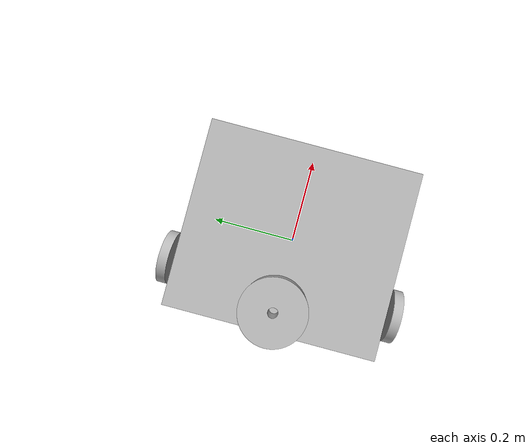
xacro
<?xml version="1.0" ?>
<robot name="ramos" xmlns:xacro="http://www.ros.org/wiki/xacro">

<xacro:include filename="$(find ramos_description)/urdf/materials.xacro" />
<xacro:include filename="$(find ramos_description)/urdf/ramos.trans" />
<xacro:include filename="$(find ramos_description)/urdf/ramos.gazebo" />
<link name="base_link">
  <inertial>
    <origin xyz="-0.0004936392022467394 0.0 0.07842907834280251" rpy="0 0 0"/>
    <mass value="121.41115919800309"/>
    <inertia ixx="2.59902" iyy="2.037187" izz="4.476291" ixy="0.0" iyz="0.0" ixz="0.012916"/>
  </inertial>
  <visual>
    <origin xyz="0 0 0" rpy="0 0 0"/>
    <geometry>
      <mesh filename="package://ramos_description/meshes/base_link.stl" scale="0.001 0.001 0.001"/>
    </geometry>
    <material name="silver"/>
  </visual>
  <collision>
    <origin xyz="0 0 0" rpy="0 0 0"/>
    <geometry>
      <mesh filename="package://ramos_description/meshes/base_link.stl" scale="0.001 0.001 0.001"/>
    </geometry>
  </collision>
</link>

<link name="wheel1_1">
  <inertial>
    <origin xyz="-1.6792123247455493e-15 -0.010999999999999954 0.0" rpy="0 0 0"/>
    <mass value="0.25005354359004234"/>
    <inertia ixx="0.000255" iyy="0.00049" izz="0.000255" ixy="-0.0" iyz="0.0" ixz="-0.0"/>
  </inertial>
  <visual>
    <origin xyz="0.115 0.26 -0.0625" rpy="0 0 0"/>
    <geometry>
      <mesh filename="package://ramos_description/meshes/wheel1_1.stl" scale="0.001 0.001 0.001"/>
    </geometry>
    <material name="silver"/>
  </visual>
  <collision>
    <origin xyz="0.115 0.26 -0.0625" rpy="0 0 0"/>
    <geometry>
      <mesh filename="package://ramos_description/meshes/wheel1_1.stl" scale="0.001 0.001 0.001"/>
    </geometry>
  </collision>
</link>

<link name="wheel2_1">
  <inertial>
    <origin xyz="1.7486012637846216e-15 0.010999999999999954 1.3877787807814457e-17" rpy="0 0 0"/>
    <mass value="0.2500535435900424"/>
    <inertia ixx="0.000255" iyy="0.00049" izz="0.000255" ixy="-0.0" iyz="0.0" ixz="-0.0"/>
  </inertial>
  <visual>
    <origin xyz="0.115 -0.26 -0.0625" rpy="0 0 0"/>
    <geometry>
      <mesh filename="package://ramos_description/meshes/wheel2_1.stl" scale="0.001 0.001 0.001"/>
    </geometry>
    <material name="silver"/>
  </visual>
  <collision>
    <origin xyz="0.115 -0.26 -0.0625" rpy="0 0 0"/>
    <geometry>
      <mesh filename="package://ramos_description/meshes/wheel2_1.stl" scale="0.001 0.001 0.001"/>
    </geometry>
  </collision>
</link>

<link name="caster1_1">
  <inertial>
    <origin xyz="-0.02499999999999994 -0.07000000000000003 -0.01759146341463416" rpy="0 0 0"/>
    <mass value="0.0021467549799530335"/>
    <inertia ixx="1e-06" iyy="1e-06" izz="1e-06" ixy="0.0" iyz="0.0" ixz="0.0"/>
  </inertial>
  <visual>
    <origin xyz="-0.22 0.0 -0.0425" rpy="0 0 0"/>
    <geometry>
      <mesh filename="package://ramos_description/meshes/caster1_1.stl" scale="0.001 0.001 0.001"/>
    </geometry>
    <material name="silver"/>
  </visual>
  <collision>
    <origin xyz="-0.22 0.0 -0.0425" rpy="0 0 0"/>
    <geometry>
      <mesh filename="package://ramos_description/meshes/caster1_1.stl" scale="0.001 0.001 0.001"/>
    </geometry>
  </collision>
</link>

<link name="caster2_1">
  <inertial>
    <origin xyz="-0.024999999999999967 0.06999999999999997 -0.017591463414634145" rpy="0 0 0"/>
    <mass value="0.0021467549799530253"/>
    <inertia ixx="1e-06" iyy="1e-06" izz="1e-06" ixy="0.0" iyz="0.0" ixz="0.0"/>
  </inertial>
  <visual>
    <origin xyz="-0.22 0.0 -0.0425" rpy="0 0 0"/>
    <geometry>
      <mesh filename="package://ramos_description/meshes/caster2_1.stl" scale="0.001 0.001 0.001"/>
    </geometry>
    <material name="silver"/>
  </visual>
  <collision>
    <origin xyz="-0.22 0.0 -0.0425" rpy="0 0 0"/>
    <geometry>
      <mesh filename="package://ramos_description/meshes/caster2_1.stl" scale="0.001 0.001 0.001"/>
    </geometry>
  </collision>
</link>

<link name="lidar_1">
  <inertial>
    <origin xyz="1.8082757513582237e-14 5.9232972891274e-18 0.024999999999999856" rpy="0 0 0"/>
    <mass value="3.013327316029944"/>
    <inertia ixx="0.002553" iyy="0.002553" izz="0.003851" ixy="-0.0" iyz="-0.0" ixz="0.0"/>
  </inertial>
  <visual>
    <origin xyz="0.115 -0.0 -0.4825" rpy="0 0 0"/>
    <geometry>
      <mesh filename="package://ramos_description/meshes/lidar_1.stl" scale="0.001 0.001 0.001"/>
    </geometry>
    <material name="silver"/>
  </visual>
  <collision>
    <origin xyz="0.115 -0.0 -0.4825" rpy="0 0 0"/>
    <geometry>
      <mesh filename="package://ramos_description/meshes/lidar_1.stl" scale="0.001 0.001 0.001"/>
    </geometry>
  </collision>
</link>

<joint name="Revolute 6" type="continuous">
  <origin xyz="-0.115 -0.26 0.0625" rpy="0 0 0"/>
  <parent link="base_link"/>
  <child link="wheel1_1"/>
  <axis xyz="0.0 -1.0 0.0"/>
</joint>

<joint name="Revolute 7" type="continuous">
  <origin xyz="-0.115 0.26 0.0625" rpy="0 0 0"/>
  <parent link="base_link"/>
  <child link="wheel2_1"/>
  <axis xyz="0.0 1.0 0.0"/>
</joint>

<joint name="Rigid 8" type="fixed">
  <origin xyz="0.22 0.0 0.0425" rpy="0 0 0"/>
  <parent link="base_link"/>
  <child link="caster1_1"/>
</joint>

<joint name="Rigid 9" type="fixed">
  <origin xyz="0.22 0.0 0.0425" rpy="0 0 0"/>
  <parent link="base_link"/>
  <child link="caster2_1"/>
</joint>

<joint name="Rigid 10" type="fixed">
  <origin xyz="-0.115 0.0 0.4825" rpy="0 0 0"/>
  <parent link="base_link"/>
  <child link="lidar_1"/>
</joint>

</robot>

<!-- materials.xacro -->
<robot name="ramos" xmlns:xacro="http://www.ros.org/wiki/xacro" >

<material name="silver">
  <color rgba="0.700 0.700 0.700 1.000"/>
</material>

</robot>

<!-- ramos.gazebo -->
<robot name="ramos" xmlns:xacro="http://www.ros.org/wiki/xacro" >

<xacro:property name="body_color" value="Gazebo/Silver" />

<gazebo>
  <plugin name="control" filename="libgazebo_ros_control.so"/>
</gazebo>
<gazebo reference="base_link">
  <material>${body_color}</material>
  <mu1>0.2</mu1>
  <mu2>0.2</mu2>
  <selfCollide>true</selfCollide>
  <gravity>true</gravity>
</gazebo>

<gazebo reference="wheel1_1">
  <material>${body_color}</material>
  <mu1>0.2</mu1>
  <mu2>0.2</mu2>
  <selfCollide>true</selfCollide>
</gazebo>

<gazebo reference="wheel2_1">
  <material>${body_color}</material>
  <mu1>0.2</mu1>
  <mu2>0.2</mu2>
  <selfCollide>true</selfCollide>
</gazebo>

<gazebo reference="caster1_1">
  <material>${body_color}</material>
  <mu1>0.2</mu1>
  <mu2>0.2</mu2>
  <selfCollide>true</selfCollide>
</gazebo>

<gazebo reference="caster2_1">
  <material>${body_color}</material>
  <mu1>0.2</mu1>
  <mu2>0.2</mu2>
  <selfCollide>true</selfCollide>
</gazebo>

<gazebo reference="lidar_1">
  <material>${body_color}</material>
  <mu1>0.2</mu1>
  <mu2>0.2</mu2>
  <selfCollide>true</selfCollide>
</gazebo>

</robot>
